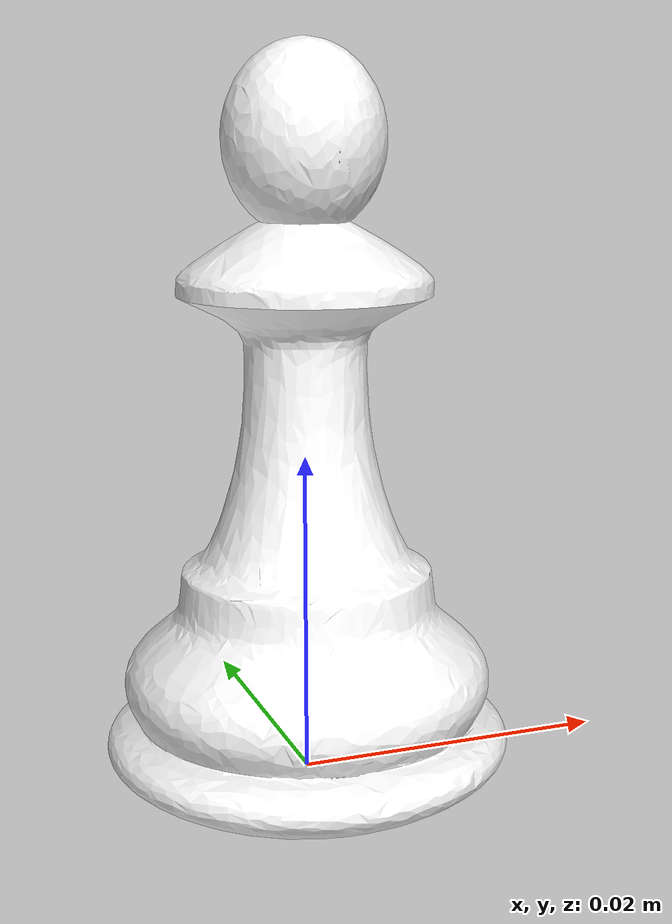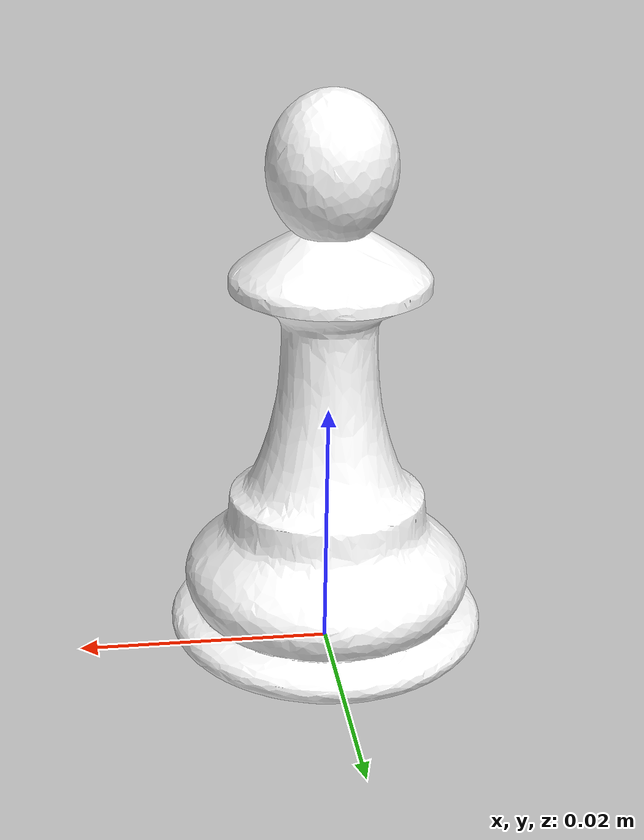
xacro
<?xml version="1.0"?>
<robot xmlns:xacro="http://wiki.ros.org/xacro" name="chess_piece">

  <xacro:arg name="mesh_name" default="pedone_fide.stl"/>
  <xacro:arg name="color_rgba" default="1.0 1.0 1.0 1.0"/>
  <xacro:arg name="piece_type" default="p"/>

  <xacro:property name="piece_data" value="${dict(
      p=dict(vx=0.0,    vy=0.0, vz=0.0, c_rad=0.0085, c_len=0.045, c_z=0.0225),
      r=dict(vx=0.0,    vy=0.0, vz=0.0, c_rad=0.0110, c_len=0.055, c_z=0.0275),
      n=dict(vx=0.0,    vy=0.0, vz=0.0, c_rad=0.0110, c_len=0.060, c_z=0.0300),
      b=dict(vx=0.0,    vy=0.0, vz=0.0, c_rad=0.0110, c_len=0.070, c_z=0.0350),
      q=dict(vx=0.0,    vy=0.0, vz=0.0, c_rad=0.0120, c_len=0.080, c_z=0.0400),
      k=dict(vx=0.0,    vy=0.0, vz=0.0, c_rad=0.0120, c_len=0.090, c_z=0.0450)
  )}"/>

  <xacro:property name="data" value="${piece_data['$(arg piece_type)']}"/>

  <link name="piece_base_link">
    <inertial>
      <origin xyz="0 0 ${data['c_z']}" rpy="0 0 0"/>
      <mass value="0.05"/>
      <inertia ixx="0.00001" ixy="0.0" ixz="0.0" iyy="0.00001" iyz="0.0" izz="0.00001"/>
    </inertial>

    <visual>
      <origin xyz="${data['vx']} ${data['vy']} ${data['vz']}" rpy="0 0 0"/>
      <geometry>
        <mesh filename="package://robot_arms/meshes/scacchi/$(arg mesh_name)" scale="0.001 0.001 0.001"/>
      </geometry>
      <material name="piece_material">
        <color rgba="$(arg color_rgba)"/>
      </material>
    </visual>
  </link>

  <gazebo>
    <static>true</static>
  </gazebo>

</robot>
